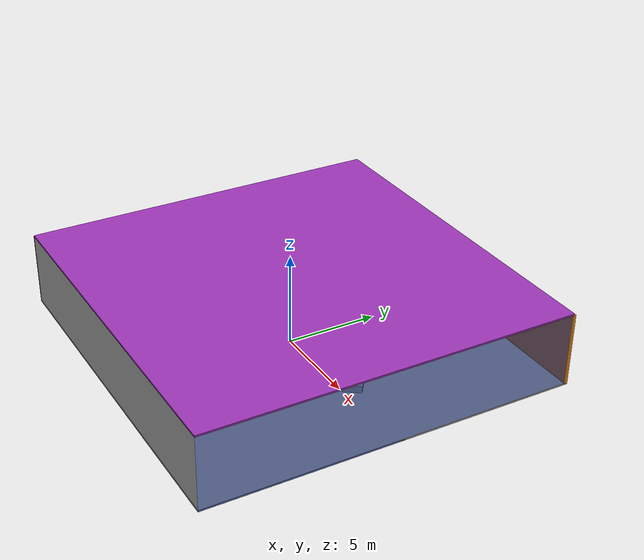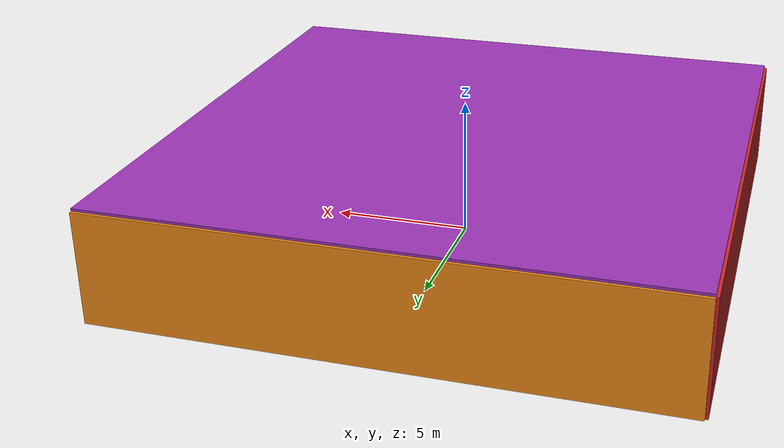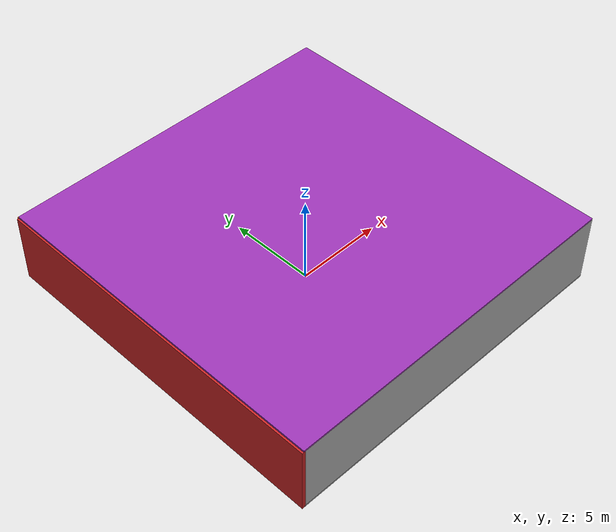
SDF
<sdf version="1.4">
 <world name="default">
  <physics type="ode">
   <max_step_size>0.001</max_step_size>
   <real_time_factor>1</real_time_factor>
   <real_time_update_rate>1000</real_time_update_rate>
   <gravity>0 0 -9.8</gravity>
  </physics>
  <scene><ambient>0.4 0.4 0.4 1</ambient><background>0.7 0.7 0.7 1</background><shadows>1</shadows></scene>
  <model name="Surrounding">
   <static>1</static>
   <link name="Ceiling">
    <collision name="Ceiling_Collision"><geometry><box><size>20 20 0.1</size></box></geometry></collision>
    <visual name="Ceiling_Visual">
     <geometry><box><size>20 20 0.1</size></box></geometry>
     <material>
      <script><uri>file://media/materials/scripts/gazebo.material</uri><name>Gazebo/Purple</name></script>
     </material>
    </visual>
    <pose>0 0 4.05 0 0 0</pose>
   </link>
   <link name="Wall_South">
    <collision name="Wall_South_Collision">
     <geometry><box><size>20 0 4</size></box></geometry>
     <pose>0 0 2 0 -0 0</pose>
    </collision>
    <visual name="Wall_South_Visual">
     <pose>0 0 2 0 -0 0</pose>
     <geometry><box><size>20 0 4</size></box></geometry>
     <material>
      <script><uri>file://media/materials/scripts/gazebo.material</uri><name>Gazebo/LightOff</name></script>
     </material>
    </visual>
    <velocity_decay><linear>0</linear><angular>0</angular></velocity_decay>
    <pose>0 -10 0 0 -0 0</pose>
   </link>
   <link name="Wall_East">
    <collision name="Wall_21_Collision">
     <geometry><box><size>20 0 4</size></box></geometry>
     <pose>0 0 2 0 -0 0</pose>
    </collision>
    <visual name="Wall_21_Visual">
     <pose>0 0 2 0 -0 0</pose>
     <geometry><box><size>20 0 4</size></box></geometry>
     <material>
      <script><uri>file://media/materials/scripts/gazebo.material</uri><name>Gazebo/BlueTransparent</name></script>
     </material>
    </visual>
    <velocity_decay><linear>0</linear><angular>0</angular></velocity_decay>
    <pose>10 0 0 0 -0 1.5708</pose>
   </link>
   <link name="Wall_North">
    <collision name="Wall_22_Collision">
     <geometry><box><size>20 0.2 4</size></box></geometry>
     <pose>0 0 2 0 -0 0</pose>
    </collision>
    <visual name="Wall_22_Visual">
     <pose>0 0 2 0 -0 0</pose>
     <geometry><box><size>20 0.2 4</size></box></geometry>
     <material>
      <script><uri>file://media/materials/scripts/gazebo.material</uri><name>Gazebo/Orange</name></script>
     </material>
    </visual>
    <velocity_decay><linear>0</linear><angular>0</angular></velocity_decay>
    <pose>0 10 0 0 -0 0</pose>
   </link>
   <link name="Wall_West">
    <collision name="Wall_23_Collision">
     <geometry><box><size>20 0.2 4</size></box></geometry>
     <pose>0 0 2 0 -0 0</pose>
    </collision>
    <visual name="Wall_23_Visual">
     <pose>0 0 2 0 -0 0</pose>
     <geometry><box><size>20 0.2 4</size></box></geometry>
     <material>
      <script><uri>file://media/materials/scripts/gazebo.material</uri><name>Gazebo/RedBright</name></script>
     </material>
    </visual>
    <velocity_decay><linear>0</linear><angular>0</angular></velocity_decay>
    <pose>-10 0 0 0 0 -1.5708</pose>
   </link>
   <link name="Ground_link">
    <collision name="collision">
     <pose>0 0 .05 0 -0 0</pose>
     <geometry><box><size>20 20 0.1</size></box></geometry>
    </collision>
    <visual name="visual">
     <pose>0 0 .05 0 -0 0</pose>
     <geometry><box><size>20 20 0.1</size></box></geometry>
     <material>
      <script><uri>file://media/materials/scripts/gazebo.material</uri><name>Gazebo/GreyGradientSky</name></script>
     </material>
    </visual>
   </link>
   <static>1</static>
  </model>
  <spherical_coordinates>
   <surface_model>EARTH_WGS84</surface_model>
   <latitude_deg>0</latitude_deg>
   <longitude_deg>0</longitude_deg>
   <elevation>0</elevation>
   <heading_deg>0</heading_deg>
  </spherical_coordinates>
  <light name="lightball_0" type="diffuse">
   <diffuse>0.8 0.8 0.8 1</diffuse>
   <specular>0.2 0.2 0.2 1</specular>
   <attenuation>
    <range>100</range>
    <constant>0.7</constant>
    <linear>0.01</linear>
    <quadratic>0.001</quadratic>
   </attenuation>
   <direction>-0.5 0.1 -0.9</direction>
   <pose>-2.93277021804 6.45196026223 3.65139764072 0 0 0</pose>
  </light>
  <light name="lightball_1" type="diffuse">
   <diffuse>0.8 0.8 0.8 1</diffuse>
   <specular>0.2 0.2 0.2 1</specular>
   <attenuation>
    <range>100</range>
    <constant>0.7</constant>
    <linear>0.01</linear>
    <quadratic>0.001</quadratic>
   </attenuation>
   <direction>-0.5 0.1 -0.9</direction>
   <pose>-9.91365906339 -0.48266437978 1.55909541956 0 0 0</pose>
  </light>
  <light name="lightball_2" type="diffuse">
   <diffuse>0.8 0.8 0.8 1</diffuse>
   <specular>0.2 0.2 0.2 1</specular>
   <attenuation>
    <range>100</range>
    <constant>0.7</constant>
    <linear>0.01</linear>
    <quadratic>0.001</quadratic>
   </attenuation>
   <direction>-0.5 0.1 -0.9</direction>
   <pose>3.12776833499 -8.60463627404 1.78808905277 0 0 0</pose>
  </light>
  <light name="lightball_3" type="diffuse">
   <diffuse>0.8 0.8 0.8 1</diffuse>
   <specular>0.2 0.2 0.2 1</specular>
   <attenuation>
    <range>100</range>
    <constant>0.7</constant>
    <linear>0.01</linear>
    <quadratic>0.001</quadratic>
   </attenuation>
   <direction>-0.5 0.1 -0.9</direction>
   <pose>-2.5657917846 -4.15420487863 1.99675838668 0 0 0</pose>
  </light>
  <include><uri>model://cabinet</uri><pose>-7.45606328643 -7.4040381122 0 0 0 0.9770864178</pose></include>
  <include>
   <uri>model://textured_shapes</uri>
   <pose>-8.03124699226 4.88798964359 0 0 0 3.04235800745</pose>
  </include>
  <include><uri>model://table</uri><pose>-2.08827717915 1.60904004267 0 0 0 1.3349751242</pose></include>
  <include>
   <uri>model://construction_cone</uri>
   <pose>-2.05520044768 4.94413427018 0 0 0 0.143103475648</pose>
  </include>
  <include><uri>model://cabinet</uri><pose>-1.29008379275 7.258910257 0 0 0 0.765234937276</pose></include>
  <include>
   <uri>model://robocup_3Dsim_goal</uri>
   <pose>0.999835468015 0.789434685004 0 0 0 0.473336064178</pose>
  </include>
  <include>
   <uri>model://textured_shapes</uri>
   <pose>4.02502075611 1.53361916696 0 0 0 0.934619513455</pose>
  </include>
 </world>
</sdf>

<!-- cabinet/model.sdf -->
<sdf version="1.5">
  <model name="cabinet">
    <static>true</static>
    <link name="cabinet_bottom_plate">
      <inertial>
        <pose>0 0 -1 0 0 0</pose>
        <inertia>
          <ixx>2.050000</ixx>
          <ixy>0</ixy>
          <ixz>0</ixz>
          <iyy>2.050000</iyy>
          <iyz>0</iyz>
          <izz>2.050000</izz>
        </inertia>
        <mass>25.000000</mass>
      </inertial>
      <collision name="cabinet_bottom_plate_geom">
        <pose>0 0 0.010000 0 0 0</pose>
        <geometry>
          <box>
            <size>0.450000 0.450000 0.020000</size>
          </box>
        </geometry>
      </collision>
      <visual name="cabinet_bottom_plate_geom_visual">
        <pose>0 0 0.010000 0 0 0</pose>
        <geometry>
          <box>
            <size>0.450000 0.450000 0.020000</size>
          </box>
        </geometry>
        <material>
          <script>
            <uri>model://media/materials/scripts/gazebo.material</uri>
            <name>Gazebo/Wood</name>
          </script>
        </material>
      </visual>
      <collision name="cabinet_bottom_plate_geom_cabinet_back_plate">
        <pose>0.235000 0 0.510000 0 0 0</pose>
        <geometry>
          <box>
            <size>0.020000 0.450000 1.020000</size>
          </box>
        </geometry>
      </collision>
      <visual name="cabinet_bottom_plate_geom_cabinet_back_plate_visual">
        <pose>0.235000 0 0.510000 0 0 0</pose>
        <geometry>
          <box>
            <size>0.020000 0.450000 1.020000</size>
          </box>
        </geometry>
        <material>
          <script>
            <uri>model://media/materials/scripts/gazebo.material</uri>
            <name>Gazebo/Wood</name>
          </script>
        </material>
      </visual>
      <collision name="cabinet_bottom_plate_geom_cabinet_left_plate">
        <pose>0 0.235000 0.510000 0 0 0</pose>
        <geometry>
          <box>
            <size>0.450000 0.020000 1.020000</size>
          </box>
        </geometry>
      </collision>
      <visual name="cabinet_bottom_plate_geom_cabinet_left_plate_visual">
        <pose>0 0.235000 0.510000 0 0 0</pose>
        <geometry>
          <box>
            <size>0.450000 0.020000 1.020000</size>
          </box>
        </geometry>
        <material>
          <script>
            <uri>model://media/materials/scripts/gazebo.material</uri>
            <name>Gazebo/Wood</name>
          </script>
        </material>
      </visual>
      <collision name="cabinet_bottom_plate_geom_cabinet_middle_plate">
        <pose>0 0 0.510000 0 0 0</pose>
        <geometry>
          <box>
            <size>0.450000 0.450000 0.020000</size>
          </box>
        </geometry>
      </collision>
      <visual name="cabinet_bottom_plate_geom_cabinet_middle_plate_visual">
        <pose>0 0 0.510000 0 0 0</pose>
        <geometry>
          <box>
            <size>0.450000 0.450000 0.020000</size>
          </box>
        </geometry>
        <material>
          <script>
            <uri>model://media/materials/scripts/gazebo.material</uri>
            <name>Gazebo/Wood</name>
          </script>
        </material>
      </visual>
      <collision name="cabinet_bottom_plate_geom_cabinet_right_plate">
        <pose>0 -0.235000 0.510000 0 0 0</pose>
        <geometry>
          <box>
            <size>0.450000 0.020000 1.020000</size>
          </box>
        </geometry>
      </collision>
      <visual name="cabinet_bottom_plate_geom_cabinet_right_plate_visual">
        <pose>0 -0.235000 0.510000 0 0 0</pose>
        <geometry>
          <box>
            <size>0.450000 0.020000 1.020000</size>
          </box>
        </geometry>
        <material>
          <script>
            <uri>model://media/materials/scripts/gazebo.material</uri>
            <name>Gazebo/Wood</name>
          </script>
        </material>
      </visual>
      <collision name="cabinet_bottom_plate_geom_cabinet_top_plate">
        <pose>0 0 1.010000 0 0 0</pose>
        <geometry>
          <box>
            <size>0.450000 0.450000 0.020000</size>
          </box>
        </geometry>
      </collision>
      <visual name="cabinet_bottom_plate_geom_cabinet_top_plate_visual">
        <pose>0 0 1.010000 0 0 0</pose>
        <geometry>
          <box>
            <size>0.450000 0.450000 0.020000</size>
          </box>
        </geometry>
        <material>
          <script>
            <uri>model://media/materials/scripts/gazebo.material</uri>
            <name>Gazebo/Wood</name>
          </script>
        </material>
      </visual>
    </link>
  </model>
</sdf>

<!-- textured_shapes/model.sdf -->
<sdf version="1.6">
  <model name="textured_shapes">
    <pose>0 0 0.5 0 0 0</pose>
    <link name="box">
      <pose>0 -1.5 0 0 0 0</pose>
      <collision name="collision">
        <geometry>
          <box>
            <size>1 1 1</size>
          </box>
        </geometry>
      </collision>
      <visual name="visual">
        <geometry>
          <box>
            <size>1 1 1</size>
          </box>
        </geometry>
        <material>
          <script>
            <uri>model://../model_source/models/textured_shapes/materials/scripts</uri>
            <uri>model://../model_source/models/textured_shapes/materials/textures</uri>
            <name>TexturedShape/Squares</name>
          </script>
        </material>
      </visual>
    </link>
    <link name="sphere">
      <collision name="collision">
        <geometry>
          <sphere>
            <radius>0.5</radius>
          </sphere>
        </geometry>
      </collision>
      <visual name="visual">
        <geometry>
          <sphere>
            <radius>0.5</radius>
          </sphere>
        </geometry>
        <material>
          <script>
            <uri>model://../model_source/models/textured_shapes/materials/scripts</uri>
            <uri>model://../model_source/models/textured_shapes/materials/textures</uri>
            <name>TexturedShape/Squares</name>
          </script>
        </material>
      </visual>
    </link>
    <link name="cylinder">
      <pose>0 1.5 0 0 0 0</pose>
      <collision name="collision">
        <geometry>
          <cylinder>
            <radius>0.5</radius>
            <length>1</length>
          </cylinder>
        </geometry>
      </collision>
      <visual name="visual">
        <geometry>
          <cylinder>
            <radius>0.5</radius>
            <length>1</length>
          </cylinder>
        </geometry>
        <material>
          <script>
            <uri>model://../model_source/models/textured_shapes/materials/scripts</uri>
            <uri>model://../model_source/models/textured_shapes/materials/textures</uri>
            <name>TexturedShape/Squares</name>
          </script>
        </material>
      </visual>
    </link>
  </model>
</sdf>

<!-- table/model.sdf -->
<sdf version="1.5">
  <model name="table">
    <static>true</static>
    <link name="link">
      <collision name="surface">
        <pose>0 0 1.0 0 0 0</pose>
        <geometry>
          <box>
            <size>1.5 0.8 0.03</size>
          </box>
        </geometry>
        <surface>
          <friction>
            <ode>
              <mu>0.6</mu>
              <mu2>0.6</mu2>
            </ode>
          </friction>
        </surface>
      </collision>
      <visual name="visual1">
        <pose>0 0 1.0 0 0 0</pose>
        <geometry>
          <box>
            <size>1.5 0.8 0.03</size>
          </box>
        </geometry>
        <material>
          <script>
            <uri>model://media/materials/scripts/gazebo.material</uri>
            <name>Gazebo/Wood</name>
          </script>
        </material>
      </visual>
      <collision name="front_left_leg">
        <pose>0.68 0.38 0.5 0 0 0</pose>
        <geometry>
          <cylinder>
            <radius>0.02</radius>
            <length>1.0</length>
          </cylinder>
        </geometry>
      </collision>
      <visual name="front_left_leg">
        <pose>0.68 0.38 0.5 0 0 0</pose>
        <geometry>
          <cylinder>
            <radius>0.02</radius>
            <length>1.0</length>
          </cylinder>
        </geometry>
        <material>
          <script>
            <uri>model://media/materials/scripts/gazebo.material</uri>
            <name>Gazebo/Grey</name>
          </script>
        </material>
      </visual>
      <collision name="front_right_leg">
        <pose>0.68 -0.38 0.5 0 0 0</pose>
        <geometry>
          <cylinder>
            <radius>0.02</radius>
            <length>1.0</length>
          </cylinder>
        </geometry>
      </collision>
      <visual name="front_right_leg">
        <pose>0.68 -0.38 0.5 0 0 0</pose>
        <geometry>
          <cylinder>
            <radius>0.02</radius>
            <length>1.0</length>
          </cylinder>
        </geometry>
        <material>
          <script>
            <uri>model://media/materials/scripts/gazebo.material</uri>
            <name>Gazebo/Grey</name>
          </script>
        </material>
      </visual>
      <collision name="back_right_leg">
        <pose>-0.68 -0.38 0.5 0 0 0</pose>
        <geometry>
          <cylinder>
            <radius>0.02</radius>
            <length>1.0</length>
          </cylinder>
        </geometry>
      </collision>
      <visual name="back_right_leg">
        <pose>-0.68 -0.38 0.5 0 0 0</pose>
        <geometry>
          <cylinder>
            <radius>0.02</radius>
            <length>1.0</length>
          </cylinder>
        </geometry>
        <material>
          <script>
            <uri>model://media/materials/scripts/gazebo.material</uri>
            <name>Gazebo/Grey</name>
          </script>
        </material>
      </visual>
      <collision name="back_left_leg">
        <pose>-0.68 0.38 0.5 0 0 0</pose>
        <geometry>
          <cylinder>
            <radius>0.02</radius>
            <length>1.0</length>
          </cylinder>
        </geometry>
      </collision>
      <visual name="back_left_leg">
        <pose>-0.68 0.38 0.5 0 0 0</pose>
        <geometry>
          <cylinder>
            <radius>0.02</radius>
            <length>1.0</length>
          </cylinder>
        </geometry>
        <material>
          <script>
            <uri>model://media/materials/scripts/gazebo.material</uri>
            <name>Gazebo/Grey</name>
          </script>
        </material>
      </visual>
    </link>
  </model>
</sdf>

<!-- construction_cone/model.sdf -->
<sdf version="1.5">
  <model name="Construction Cone">
    <link name="link">
      <collision name="collision">
        <geometry>
          <mesh>
            <scale>10 10 10</scale>
            <uri>file://isr-testbed/construction_cone/meshes/construction_cone.dae</uri>
          </mesh>
        </geometry>
      </collision>
      <visual name="visual">
        <geometry>
          <mesh>
            <scale>10 10 10</scale>
            <uri>file://isr-testbed/construction_cone/meshes/construction_cone.dae</uri>
          </mesh>
        </geometry>
      </visual>
    </link>
  </model>
</sdf>

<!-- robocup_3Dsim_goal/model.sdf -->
<sdf version="1.5">
  <model name="robocup_3d_goal">
    <static>true</static>
    <link name="left_post">
      <pose>0 1.05 0.45 0 0 0</pose>
      <collision name="collision">
        <geometry>
          <cylinder>
            <radius>0.05</radius>
            <length>0.9</length>
          </cylinder>
        </geometry>
      </collision>
      <visual name="visual">
        <geometry>
          <cylinder>
            <radius>0.05</radius>
            <length>0.9</length>
          </cylinder>
        </geometry>
        <material>
          <script>
            <uri>file://media/materials/scripts/gazebo.material</uri>
            <name>Gazebo/ZincYellow</name>
          </script>
        </material>
      </visual>
    </link>
    <link name="left_support_horiz_lower">
      <pose>0.30 1.05 0.01 0 0 0</pose>
      <collision name="collision">
        <geometry>
          <box>
            <size>0.50 0.02 0.02</size>
          </box>
        </geometry>
      </collision>
      <visual name="visual">
        <geometry>
          <box>
            <size>0.50 0.02 0.02</size>
          </box>
        </geometry>
        <material>
          <script>
            <uri>file://media/materials/scripts/gazebo.material</uri>
            <name>Gazebo/White</name>
          </script>
        </material>
      </visual>
    </link>
    <link name="left_support_horiz_upper">
      <pose>0.30 1.05 0.79 0 0 0</pose>
      <collision name="collision">
        <geometry>
          <box>
            <size>0.50 0.02 0.02</size>
          </box>
        </geometry>
      </collision>
      <visual name="visual">
        <geometry>
          <box>
            <size>0.50 0.02 0.02</size>
          </box>
        </geometry>
        <material>
          <script>
            <uri>file://media/materials/scripts/gazebo.material</uri>
            <name>Gazebo/White</name>
          </script>
        </material>
      </visual>
    </link>
    <link name="left_support_vertical">
      <pose>0.56 1.05 0.4 0 1.5708 0</pose>
      <collision name="collision">
        <geometry>
          <box>
            <size>0.80 0.02 0.02</size>
          </box>
        </geometry>
      </collision>
      <visual name="visual">
        <geometry>
          <box>
            <size>0.80 0.02 0.02</size>
          </box>
        </geometry>
        <material>
          <script>
            <uri>file://media/materials/scripts/gazebo.material</uri>
            <name>Gazebo/White</name>
          </script>
        </material>
      </visual>
    </link>
    <link name="right_support_horiz_lower">
      <pose>0.30 -1.05 0.01 0 0 0</pose>
      <collision name="collision">
        <geometry>
          <box>
            <size>0.50 0.02 0.02</size>
          </box>
        </geometry>
      </collision>
      <visual name="visual">
        <geometry>
          <box>
            <size>0.50 0.02 0.02</size>
          </box>
        </geometry>
        <material>
          <script>
            <uri>file://media/materials/scripts/gazebo.material</uri>
            <name>Gazebo/White</name>
          </script>
        </material>
      </visual>
    </link>
    <link name="right_support_horiz_upper">
      <pose>0.30 -1.05 0.79 0 0 0</pose>
      <collision name="collision">
        <geometry>
          <box>
            <size>0.50 0.02 0.02</size>
          </box>
        </geometry>
      </collision>
      <visual name="visual">
        <geometry>
          <box>
            <size>0.50 0.02 0.02</size>
          </box>
        </geometry>
        <material>
          <script>
            <uri>file://media/materials/scripts/gazebo.material</uri>
            <name>Gazebo/White</name>
          </script>
        </material>
      </visual>
    </link>
    <link name="right_support_vertical">
      <pose>0.56 -1.05 0.4 0 1.5708 0</pose>
      <collision name="collision">
        <geometry>
          <box>
            <size>0.80 0.02 0.02</size>
          </box>
        </geometry>
      </collision>
      <visual name="visual">
        <geometry>
          <box>
            <size>0.80 0.02 0.02</size>
          </box>
        </geometry>
        <material>
          <script>
            <uri>file://media/materials/scripts/gazebo.material</uri>
            <name>Gazebo/White</name>
          </script>
        </material>
      </visual>
    </link>
    <link name="center_support_horiz_lower">
      <pose>0.56 0 0.01 0 1.5708 0</pose>
      <collision name="collision">
        <geometry>
          <box>
            <size>0.02 2.08 0.02</size>
          </box>
        </geometry>
      </collision>
      <visual name="visual">
        <geometry>
          <box>
            <size>0.02 2.08 0.02</size>
          </box>
        </geometry>
        <material>
          <script>
            <uri>file://media/materials/scripts/gazebo.material</uri>
            <name>Gazebo/White</name>
          </script>
        </material>
      </visual>
    </link>
    <link name="center_support_horiz_upper">
      <pose>0.56 0 0.79 0 1.5708 0</pose>
      <collision name="collision">
        <geometry>
          <box>
            <size>0.02 2.08 0.02</size>
          </box>
        </geometry>
      </collision>
      <visual name="visual">
        <geometry>
          <box>
            <size>0.02 2.08 0.02</size>
          </box>
        </geometry>
        <material>
          <script>
            <uri>file://media/materials/scripts/gazebo.material</uri>
            <name>Gazebo/White</name>
          </script>
        </material>
      </visual>
    </link>
    <link name="right_post">
      <pose>0 -1.05 0.45 0 0 0</pose>
      <collision name="collision">
        <geometry>
          <cylinder>
            <radius>0.05</radius>
            <length>0.9</length>
          </cylinder>
        </geometry>
      </collision>
      <visual name="visual">
        <geometry>
          <cylinder>
            <radius>0.05</radius>
            <length>0.9</length>
          </cylinder>
        </geometry>
        <material>
          <script>
            <uri>file://media/materials/scripts/gazebo.material</uri>
            <name>Gazebo/ZincYellow</name>
          </script>
        </material>
      </visual>
    </link>
    <link name="crossbar">
      <pose>0 0 0.85 1.57 1.57 0</pose>
      <collision name="collision">
        <geometry>
          <cylinder>
            <radius>0.05</radius>
            <length>2.0</length>
          </cylinder>
        </geometry>
      </collision>
      <visual name="visual">
        <geometry>
          <cylinder>
            <radius>0.05</radius>
            <length>2.0</length>
          </cylinder>
        </geometry>
        <material>
          <script>
            <uri>file://media/materials/scripts/gazebo.material</uri>
            <name>Gazebo/ZincYellow</name>
          </script>
        </material>
      </visual>
    </link>
    <link name="center_net">
      <pose>0.56 0 0.40 0 0 0</pose>
      <collision name="collision">
        <geometry>
          <box>
            <size>0.01 2.1 0.80</size>
          </box>
        </geometry>
      </collision>
      <visual name="visual">
        <geometry>
          <box>
            <size>0.01 2.1 0.80</size>
          </box>
        </geometry>
        <material>
          <script>
            <uri>model://../model_source/models/robocup09_spl_field/materials/scripts/</uri>
            <uri>model://../model_source/models/robocup09_spl_field/materials/textures/</uri>
            <name>RoboCup/Net</name>
          </script>
        </material>
      </visual>
    </link>
    <link name="left_net">
      <pose>0.30 1.05 0.40 0 0 0</pose>
      <collision name="collision">
        <geometry>
          <box>
            <size>0.50 0.01 0.76</size>
          </box>
        </geometry>
      </collision>
      <visual name="visual">
        <geometry>
          <box>
            <size>0.50 0.01 0.76</size>
          </box>
        </geometry>
        <material>
          <script>
            <uri>model://../model_source/models/robocup09_spl_field/materials/scripts/</uri>
            <uri>model://../model_source/models/robocup09_spl_field/materials/textures/</uri>
            <name>RoboCup/Net</name>
          </script>
        </material>
      </visual>
    </link>
    <link name="right_net">
      <pose>0.30 -1.05 0.40 0 0 0</pose>
      <collision name="collision">
        <geometry>
          <box>
            <size>0.50 0.01 0.76</size>
          </box>
        </geometry>
      </collision>
      <visual name="visual">
        <geometry>
          <box>
            <size>0.50 0.01 0.76</size>
          </box>
        </geometry>
        <material>
          <script>
            <uri>model://../model_source/models/robocup09_spl_field/materials/scripts/</uri>
            <uri>model://../model_source/models/robocup09_spl_field/materials/textures/</uri>
            <name>RoboCup/Net</name>
          </script>
        </material>
      </visual>
    </link>
  </model>
</sdf>
